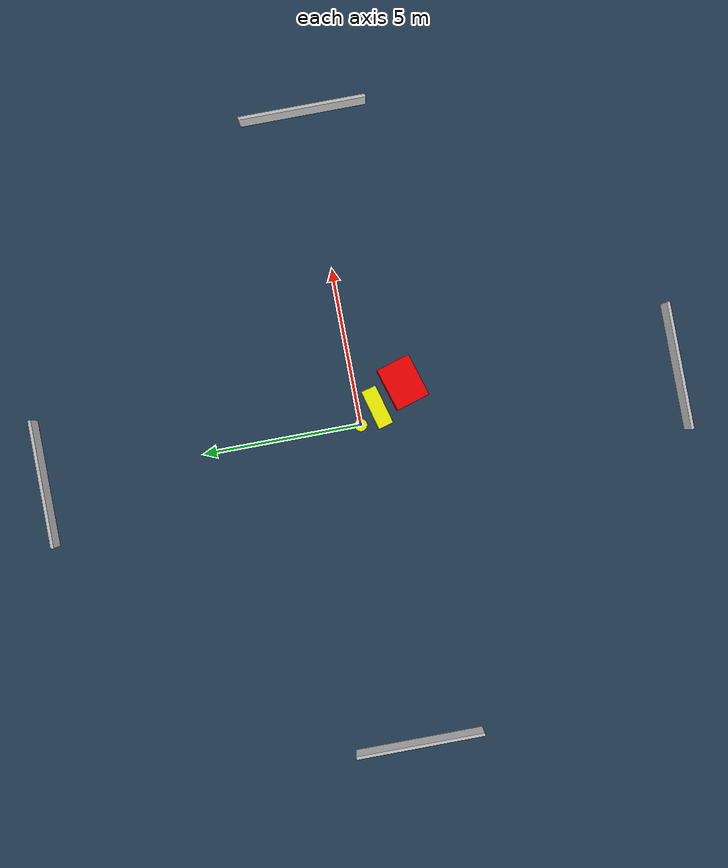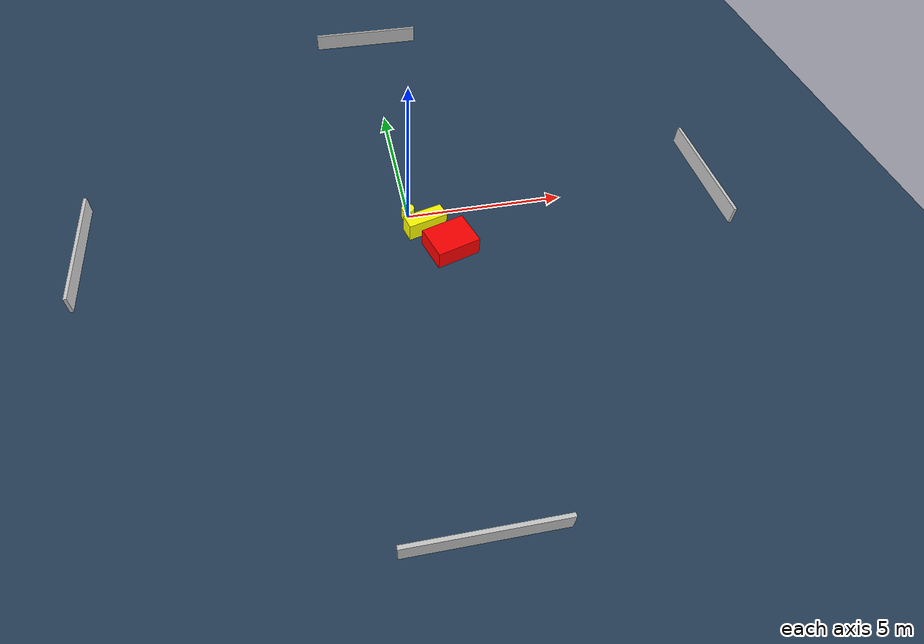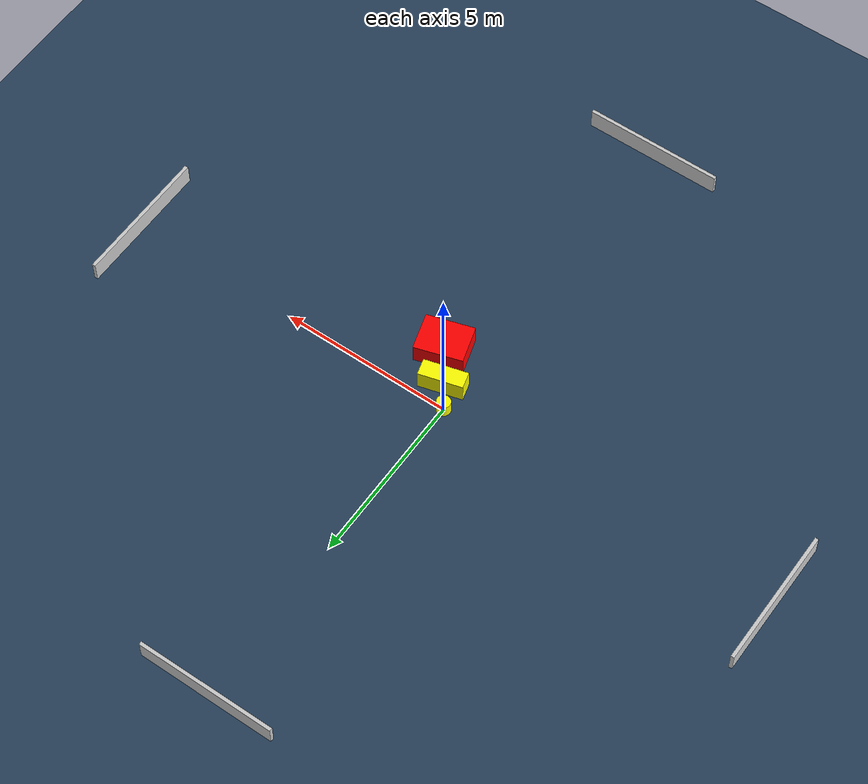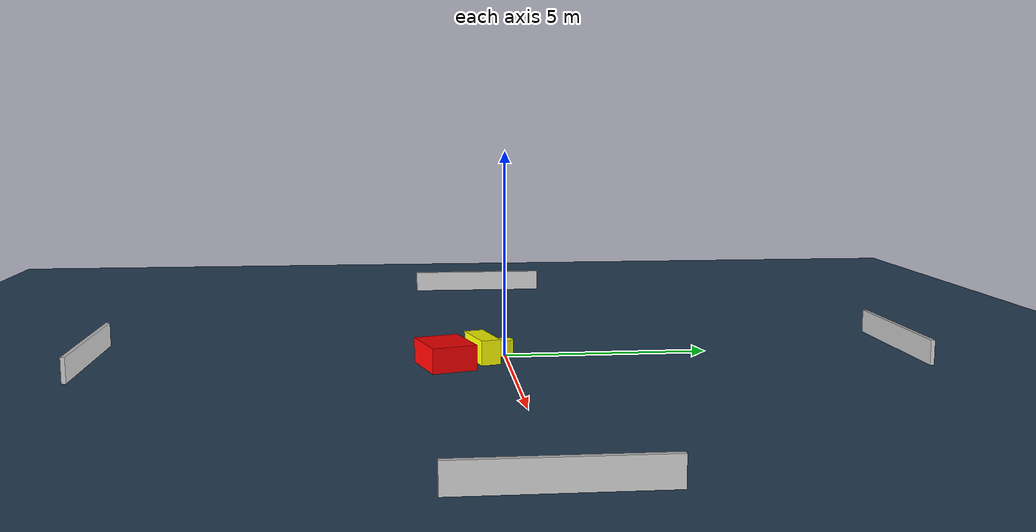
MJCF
<?xml version="1.0" ?>
<mujoco model="generated_environment">
  <option timestep="0.01" integrator="RK4" cone="elliptic"/>
  <default>
    <geom density="1"/>
  </default>
  <asset>
    <texture builtin="gradient" height="3072" name="skybox" rgb1="0.3 0.5 0.7" rgb2="0 0 0" type="skybox" width="512"/>
    <texture builtin="checker" height="300" name="groundplane" rgb1="0.2 0.3 0.4" rgb2="0.1 0.2 0.3" type="2d" width="300"/>
    <material name="groundplane" reflectance="0.2" texrepeat="5 5" texture="groundplane"/>
  </asset>
  <worldbody>
    <light dir="0 0 -1" directional="true" pos="0 0 1.5"/>
    <geom condim="3" friction="0.5 0.005 0.001" material="groundplane" name="floor" pos="0 0 0" size="0 0 0.05" type="plane"/>
    <body name="walls">
      <geom name="wall_1" condim="4" pos="-10.0 0.0 0.3" rgba="0.800000011920929 0.800000011920929 0.800000011920929 1.0" size="0.05 2.0 0.3" type="box"/>
      <geom name="wall_2" condim="4" pos="10.0 0.0 0.3" rgba="0.800000011920929 0.800000011920929 0.800000011920929 1.0" size="0.05 2.0 0.3" type="box"/>
      <geom name="wall_3" condim="4" pos="0.0 -10.0 0.3" rgba="0.800000011920929 0.800000011920929 0.800000011920929 1.0" size="2.0 0.05 0.3" type="box"/>
      <geom name="wall_4" condim="4" pos="0.0 10.0 0.3" rgba="0.800000011920929 0.800000011920929 0.800000011920929 1.0" size="2.0 0.05 0.3" type="box"/>
    </body>
    <body name="robot">
      <joint name="joint_x" type="slide" pos="0 0 0" axis="1 0 0"/>
      <joint name="joint_y" type="slide" pos="0 0 0" axis="0 1 0"/>
      <geom name="robot" type="cylinder" pos="0.0 0.0 0.2" size="0.2 0.2 0.0" mass="5.0" friction="1.0 0.005 0.0001" condim="4" rgba="1.0 1.0 0.0 1.0"/>
    </body>
    <body name="obstacle_1_movable">
      <geom name="obstacle_1_movable" condim="4" pos="0.43804499252376766 -0.5940869830031044 0.3" euler="0 0 285.0426098415247" friction="0.0 0.005 0.001" rgba="1.0 1.0 0.0 1.0" size="0.23999062249721245 0.6308347387715023 0.3" type="box" mass="0.1"/>
      <joint type="free"/>
    </body>
    <body name="obstacle_2_static">
      <geom name="obstacle_2_static" condim="4" pos="1.0487865068334783 -1.5126078416641628 0.3" euler="0 0 16.808050477848223" friction="0.0 0.005 0.001" rgba="1.0 0.0 0.0 1.0" size="0.6909803630189619 0.5428377332180873 0.3" type="box"/>
    </body>
  </worldbody>
  <actuator>
    <motor name="actuator_x" joint="joint_x" gear="1" ctrlrange="-1 1"/>
    <motor name="actuator_y" joint="joint_y" gear="1" ctrlrange="-1 1"/>
  </actuator>
</mujoco>
